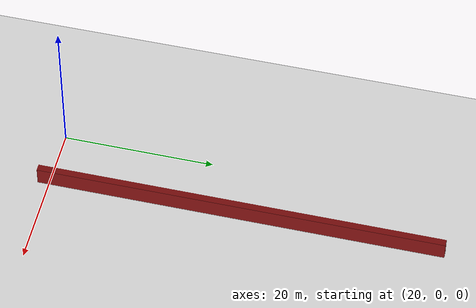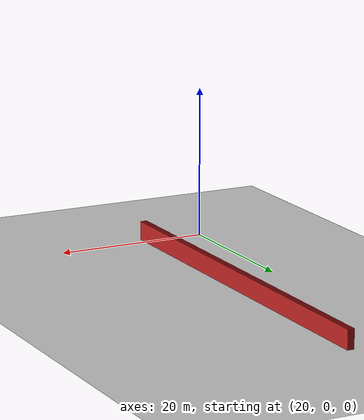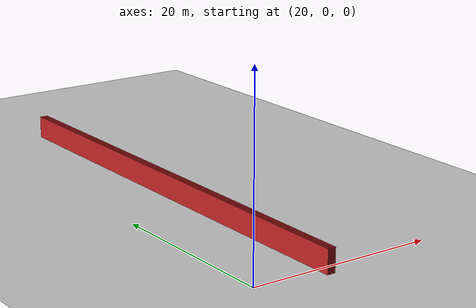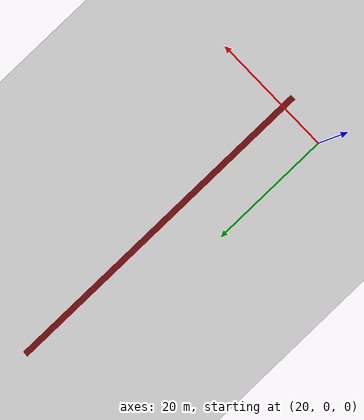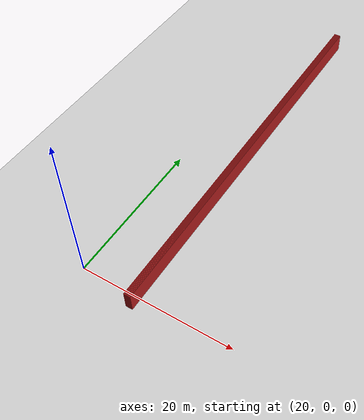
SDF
<sdf version="1.4">
 <world name="1_wall">
  <model name="ground_plane">
   <static>1</static>
   <link name="link">
    <collision name="collision">
     <geometry><plane><normal>0 0 1</normal><size>1000 1000</size></plane></geometry>
     <surface><friction><ode><mu>100</mu><mu2>50</mu2></ode></friction></surface>
    </collision>
    <visual name="visual">
     <cast_shadows>0</cast_shadows>
     <geometry><plane><normal>0 0 1</normal><size>10000 10000</size></plane></geometry>
     <material>
      <script><uri>file://media/materials/scripts/gazebo.material</uri><name>Gazebo/Grey</name></script>
     </material>
    </visual>
    <velocity_decay><linear>0</linear><angular>0</angular></velocity_decay>
   </link>
  </model>
  <model name="Wall_573">
   <static>1</static>
   <link name="Wall_573">
    <collision name="Wall_Collision_573">
     <geometry><box><size>53.65 0.05 2.5</size></box></geometry>
     <pose>0 0 1.25 0 -0 0</pose>
    </collision>
    <visual name="Wall_Visual_573">
     <pose>0 0 1.25 0 -0 0</pose>
     <geometry><box><size>53.65 0.05 2.5</size></box></geometry>
     <material>
      <script><uri>file://media/materials/scripts/gazebo.material</uri><name>Gazebo/Red</name></script>
     </material>
    </visual>
    <velocity_decay><linear>0</linear><angular>0</angular></velocity_decay>
    <pose>27.15 25.3 0 0 0 1.5707963267948966</pose>
   </link>
  </model>
  <model name="Wall_574">
   <static>1</static>
   <link name="Wall_574">
    <collision name="Wall_Collision_574">
     <geometry><box><size>53.65 0.05 2.5</size></box></geometry>
     <pose>0 0 1.25 0 -0 0</pose>
    </collision>
    <visual name="Wall_Visual_574">
     <pose>0 0 1.25 0 -0 0</pose>
     <geometry><box><size>53.65 0.05 2.5</size></box></geometry>
     <material>
      <script><uri>file://media/materials/scripts/gazebo.material</uri><name>Gazebo/Red</name></script>
     </material>
    </visual>
    <velocity_decay><linear>0</linear><angular>0</angular></velocity_decay>
    <pose>27.2 25.3 0 0 0 1.5707963267948966</pose>
   </link>
  </model>
  <model name="Wall_575">
   <static>1</static>
   <link name="Wall_575">
    <collision name="Wall_Collision_575">
     <geometry><box><size>53.65 0.05 2.5</size></box></geometry>
     <pose>0 0 1.25 0 -0 0</pose>
    </collision>
    <visual name="Wall_Visual_575">
     <pose>0 0 1.25 0 -0 0</pose>
     <geometry><box><size>53.65 0.05 2.5</size></box></geometry>
     <material>
      <script><uri>file://media/materials/scripts/gazebo.material</uri><name>Gazebo/Red</name></script>
     </material>
    </visual>
    <velocity_decay><linear>0</linear><angular>0</angular></velocity_decay>
    <pose>27.25 25.3 0 0 0 1.5707963267948966</pose>
   </link>
  </model>
  <model name="Wall_576">
   <static>1</static>
   <link name="Wall_576">
    <collision name="Wall_Collision_576">
     <geometry><box><size>53.65 0.05 2.5</size></box></geometry>
     <pose>0 0 1.25 0 -0 0</pose>
    </collision>
    <visual name="Wall_Visual_576">
     <pose>0 0 1.25 0 -0 0</pose>
     <geometry><box><size>53.65 0.05 2.5</size></box></geometry>
     <material>
      <script><uri>file://media/materials/scripts/gazebo.material</uri><name>Gazebo/Red</name></script>
     </material>
    </visual>
    <velocity_decay><linear>0</linear><angular>0</angular></velocity_decay>
    <pose>27.3 25.3 0 0 0 1.5707963267948966</pose>
   </link>
  </model>
  <model name="Wall_577">
   <static>1</static>
   <link name="Wall_577">
    <collision name="Wall_Collision_577">
     <geometry><box><size>53.65 0.05 2.5</size></box></geometry>
     <pose>0 0 1.25 0 -0 0</pose>
    </collision>
    <visual name="Wall_Visual_577">
     <pose>0 0 1.25 0 -0 0</pose>
     <geometry><box><size>53.65 0.05 2.5</size></box></geometry>
     <material>
      <script><uri>file://media/materials/scripts/gazebo.material</uri><name>Gazebo/Red</name></script>
     </material>
    </visual>
    <velocity_decay><linear>0</linear><angular>0</angular></velocity_decay>
    <pose>27.35 25.3 0 0 0 1.5707963267948966</pose>
   </link>
  </model>
  <model name="Wall_578">
   <static>1</static>
   <link name="Wall_578">
    <collision name="Wall_Collision_578">
     <geometry><box><size>53.65 0.05 2.5</size></box></geometry>
     <pose>0 0 1.25 0 -0 0</pose>
    </collision>
    <visual name="Wall_Visual_578">
     <pose>0 0 1.25 0 -0 0</pose>
     <geometry><box><size>53.65 0.05 2.5</size></box></geometry>
     <material>
      <script><uri>file://media/materials/scripts/gazebo.material</uri><name>Gazebo/Red</name></script>
     </material>
    </visual>
    <velocity_decay><linear>0</linear><angular>0</angular></velocity_decay>
    <pose>27.4 25.3 0 0 0 1.5707963267948966</pose>
   </link>
  </model>
  <model name="Wall_579">
   <static>1</static>
   <link name="Wall_579">
    <collision name="Wall_Collision_579">
     <geometry><box><size>53.65 0.05 2.5</size></box></geometry>
     <pose>0 0 1.25 0 -0 0</pose>
    </collision>
    <visual name="Wall_Visual_579">
     <pose>0 0 1.25 0 -0 0</pose>
     <geometry><box><size>53.65 0.05 2.5</size></box></geometry>
     <material>
      <script><uri>file://media/materials/scripts/gazebo.material</uri><name>Gazebo/Red</name></script>
     </material>
    </visual>
    <velocity_decay><linear>0</linear><angular>0</angular></velocity_decay>
    <pose>27.45 25.3 0 0 0 1.5707963267948966</pose>
   </link>
  </model>
  <model name="Wall_580">
   <static>1</static>
   <link name="Wall_580">
    <collision name="Wall_Collision_580">
     <geometry><box><size>53.65 0.05 2.5</size></box></geometry>
     <pose>0 0 1.25 0 -0 0</pose>
    </collision>
    <visual name="Wall_Visual_580">
     <pose>0 0 1.25 0 -0 0</pose>
     <geometry><box><size>53.65 0.05 2.5</size></box></geometry>
     <material>
      <script><uri>file://media/materials/scripts/gazebo.material</uri><name>Gazebo/Red</name></script>
     </material>
    </visual>
    <velocity_decay><linear>0</linear><angular>0</angular></velocity_decay>
    <pose>27.5 25.3 0 0 0 1.5707963267948966</pose>
   </link>
  </model>
  <model name="Wall_581">
   <static>1</static>
   <link name="Wall_581">
    <collision name="Wall_Collision_581">
     <geometry><box><size>53.65 0.05 2.5</size></box></geometry>
     <pose>0 0 1.25 0 -0 0</pose>
    </collision>
    <visual name="Wall_Visual_581">
     <pose>0 0 1.25 0 -0 0</pose>
     <geometry><box><size>53.65 0.05 2.5</size></box></geometry>
     <material>
      <script><uri>file://media/materials/scripts/gazebo.material</uri><name>Gazebo/Red</name></script>
     </material>
    </visual>
    <velocity_decay><linear>0</linear><angular>0</angular></velocity_decay>
    <pose>27.55 25.3 0 0 0 1.5707963267948966</pose>
   </link>
  </model>
  <model name="Wall_582">
   <static>1</static>
   <link name="Wall_582">
    <collision name="Wall_Collision_582">
     <geometry><box><size>53.65 0.05 2.5</size></box></geometry>
     <pose>0 0 1.25 0 -0 0</pose>
    </collision>
    <visual name="Wall_Visual_582">
     <pose>0 0 1.25 0 -0 0</pose>
     <geometry><box><size>53.65 0.05 2.5</size></box></geometry>
     <material>
      <script><uri>file://media/materials/scripts/gazebo.material</uri><name>Gazebo/Red</name></script>
     </material>
    </visual>
    <velocity_decay><linear>0</linear><angular>0</angular></velocity_decay>
    <pose>27.6 25.3 0 0 0 1.5707963267948966</pose>
   </link>
  </model>
  <model name="Wall_583">
   <static>1</static>
   <link name="Wall_583">
    <collision name="Wall_Collision_583">
     <geometry><box><size>53.65 0.05 2.5</size></box></geometry>
     <pose>0 0 1.25 0 -0 0</pose>
    </collision>
    <visual name="Wall_Visual_583">
     <pose>0 0 1.25 0 -0 0</pose>
     <geometry><box><size>53.65 0.05 2.5</size></box></geometry>
     <material>
      <script><uri>file://media/materials/scripts/gazebo.material</uri><name>Gazebo/Red</name></script>
     </material>
    </visual>
    <velocity_decay><linear>0</linear><angular>0</angular></velocity_decay>
    <pose>27.65 25.3 0 0 0 1.5707963267948966</pose>
   </link>
  </model>
  <model name="Wall_584">
   <static>1</static>
   <link name="Wall_584">
    <collision name="Wall_Collision_584">
     <geometry><box><size>53.65 0.05 2.5</size></box></geometry>
     <pose>0 0 1.25 0 -0 0</pose>
    </collision>
    <visual name="Wall_Visual_584">
     <pose>0 0 1.25 0 -0 0</pose>
     <geometry><box><size>53.65 0.05 2.5</size></box></geometry>
     <material>
      <script><uri>file://media/materials/scripts/gazebo.material</uri><name>Gazebo/Red</name></script>
     </material>
    </visual>
    <velocity_decay><linear>0</linear><angular>0</angular></velocity_decay>
    <pose>27.7 25.3 0 0 0 1.5707963267948966</pose>
   </link>
  </model>
  <model name="Wall_585">
   <static>1</static>
   <link name="Wall_585">
    <collision name="Wall_Collision_585">
     <geometry><box><size>53.65 0.05 2.5</size></box></geometry>
     <pose>0 0 1.25 0 -0 0</pose>
    </collision>
    <visual name="Wall_Visual_585">
     <pose>0 0 1.25 0 -0 0</pose>
     <geometry><box><size>53.65 0.05 2.5</size></box></geometry>
     <material>
      <script><uri>file://media/materials/scripts/gazebo.material</uri><name>Gazebo/Red</name></script>
     </material>
    </visual>
    <velocity_decay><linear>0</linear><angular>0</angular></velocity_decay>
    <pose>27.75 25.3 0 0 0 1.5707963267948966</pose>
   </link>
  </model>
  <model name="Wall_586">
   <static>1</static>
   <link name="Wall_586">
    <collision name="Wall_Collision_586">
     <geometry><box><size>53.65 0.05 2.5</size></box></geometry>
     <pose>0 0 1.25 0 -0 0</pose>
    </collision>
    <visual name="Wall_Visual_586">
     <pose>0 0 1.25 0 -0 0</pose>
     <geometry><box><size>53.65 0.05 2.5</size></box></geometry>
     <material>
      <script><uri>file://media/materials/scripts/gazebo.material</uri><name>Gazebo/Red</name></script>
     </material>
    </visual>
    <velocity_decay><linear>0</linear><angular>0</angular></velocity_decay>
    <pose>27.8 25.3 0 0 0 1.5707963267948966</pose>
   </link>
  </model>
  <model name="Wall_587">
   <static>1</static>
   <link name="Wall_587">
    <collision name="Wall_Collision_587">
     <geometry><box><size>53.65 0.05 2.5</size></box></geometry>
     <pose>0 0 1.25 0 -0 0</pose>
    </collision>
    <visual name="Wall_Visual_587">
     <pose>0 0 1.25 0 -0 0</pose>
     <geometry><box><size>53.65 0.05 2.5</size></box></geometry>
     <material>
      <script><uri>file://media/materials/scripts/gazebo.material</uri><name>Gazebo/Red</name></script>
     </material>
    </visual>
    <velocity_decay><linear>0</linear><angular>0</angular></velocity_decay>
    <pose>27.85 25.3 0 0 0 1.5707963267948966</pose>
   </link>
  </model>
  <model name="Wall_588">
   <static>1</static>
   <link name="Wall_588">
    <collision name="Wall_Collision_588">
     <geometry><box><size>53.65 0.05 2.5</size></box></geometry>
     <pose>0 0 1.25 0 -0 0</pose>
    </collision>
    <visual name="Wall_Visual_588">
     <pose>0 0 1.25 0 -0 0</pose>
     <geometry><box><size>53.65 0.05 2.5</size></box></geometry>
     <material>
      <script><uri>file://media/materials/scripts/gazebo.material</uri><name>Gazebo/Red</name></script>
     </material>
    </visual>
    <velocity_decay><linear>0</linear><angular>0</angular></velocity_decay>
    <pose>27.9 25.3 0 0 0 1.5707963267948966</pose>
   </link>
  </model>
  <model name="Wall_589">
   <static>1</static>
   <link name="Wall_589">
    <collision name="Wall_Collision_589">
     <geometry><box><size>53.65 0.05 2.5</size></box></geometry>
     <pose>0 0 1.25 0 -0 0</pose>
    </collision>
    <visual name="Wall_Visual_589">
     <pose>0 0 1.25 0 -0 0</pose>
     <geometry><box><size>53.65 0.05 2.5</size></box></geometry>
     <material>
      <script><uri>file://media/materials/scripts/gazebo.material</uri><name>Gazebo/Red</name></script>
     </material>
    </visual>
    <velocity_decay><linear>0</linear><angular>0</angular></velocity_decay>
    <pose>27.95 25.3 0 0 0 1.5707963267948966</pose>
   </link>
  </model>
  <model name="Wall_590">
   <static>1</static>
   <link name="Wall_590">
    <collision name="Wall_Collision_590">
     <geometry><box><size>53.65 0.05 2.5</size></box></geometry>
     <pose>0 0 1.25 0 -0 0</pose>
    </collision>
    <visual name="Wall_Visual_590">
     <pose>0 0 1.25 0 -0 0</pose>
     <geometry><box><size>53.65 0.05 2.5</size></box></geometry>
     <material>
      <script><uri>file://media/materials/scripts/gazebo.material</uri><name>Gazebo/Red</name></script>
     </material>
    </visual>
    <velocity_decay><linear>0</linear><angular>0</angular></velocity_decay>
    <pose>28.0 25.3 0 0 0 1.5707963267948966</pose>
   </link>
  </model>
 </world>
</sdf>
